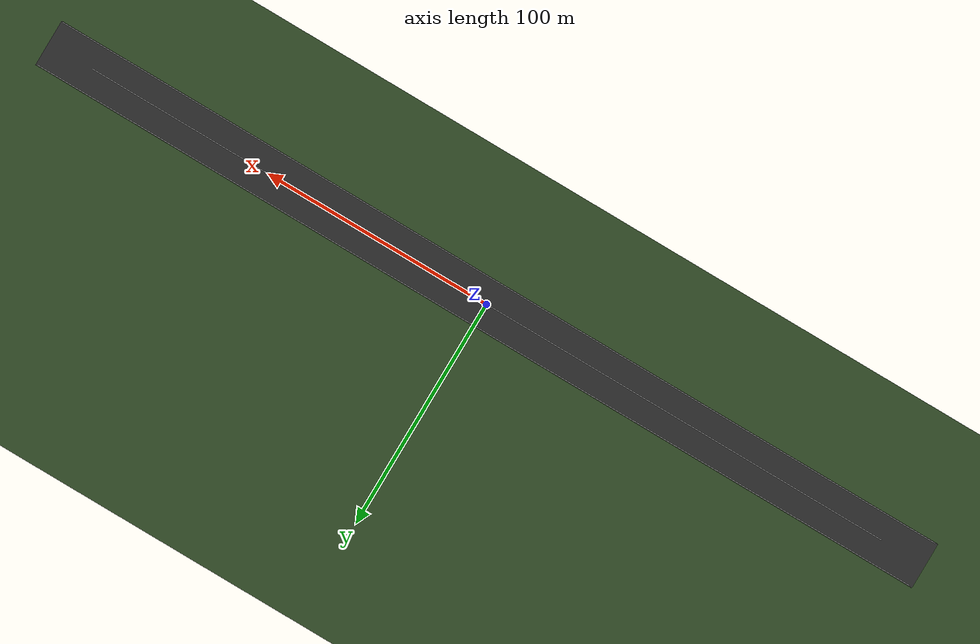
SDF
<sdf version="1.9">
 <world name="falcon_v2_manual_takeoff_runway">
  <physics name="1ms" type="dartsim">
   <max_step_size>0.001</max_step_size>
   <real_time_factor>1.0</real_time_factor>
  </physics>
  <gravity>0 0 -9.81</gravity>
  <scene>
   <ambient>0.25 0.25 0.25 1</ambient>
   <background>0.62 0.70 0.80 1</background>
   <shadows>true</shadows>
  </scene>
  <spherical_coordinates>
   <surface_model>EARTH_WGS84</surface_model>
   <world_frame_orientation>ENU</world_frame_orientation>
   <latitude_deg>0.0</latitude_deg>
   <longitude_deg>0.0</longitude_deg>
   <elevation>0.0</elevation>
   <heading_deg>0.0</heading_deg>
  </spherical_coordinates>
  <magnetic_field>5.5645e-6 22.8758e-6 -42.3884e-6</magnetic_field>
  <plugin filename="gz-sim-physics-system" name="gz::sim::systems::Physics"/>
  <plugin filename="gz-sim-scene-broadcaster-system" name="gz::sim::systems::SceneBroadcaster"/>
  <plugin filename="gz-sim-user-commands-system" name="gz::sim::systems::UserCommands"/>
  <plugin filename="gz-sim-imu-system" name="gz::sim::systems::Imu"/>
  <plugin filename="gz-sim-navsat-system" name="gz::sim::systems::NavSat"/>
  <plugin filename="gz-sim-air-pressure-system" name="gz::sim::systems::AirPressure"/>
  <light type="directional" name="sun">
   <pose>0 0 10 0 0 0</pose>
   <diffuse>0.8 0.8 0.8 1</diffuse>
   <specular>0.2 0.2 0.2 1</specular>
   <direction>-0.5 0.1 -0.9</direction>
  </light>
  <model name="ground_plane">
   <static>true</static>
   <link name="link">
    <collision name="collision">
     <geometry><plane><normal>0 0 1</normal><size>1000 1000</size></plane></geometry>
     <surface><friction><ode><mu>0.8</mu><mu2>0.8</mu2></ode></friction></surface>
    </collision>
    <visual name="visual">
     <geometry><plane><normal>0 0 1</normal><size>1000 1000</size></plane></geometry>
     <material><ambient>0.18 0.28 0.14 1</ambient><diffuse>0.18 0.28 0.14 1</diffuse></material>
    </visual>
   </link>
  </model>
  <model name="runway_visual_only">
   <static>true</static>
   <link name="runway">
    <visual name="asphalt">
     <pose>0 0 0.001 0 0 0</pose>
     <geometry><box><size>400 20 0.002</size></box></geometry>
     <material><ambient>0.12 0.12 0.12 1</ambient><diffuse>0.16 0.16 0.16 1</diffuse></material>
    </visual>
    <visual name="centerline">
     <pose>0 0 0.003 0 0 0</pose>
     <geometry><box><size>360 0.18 0.002</size></box></geometry>
     <material><ambient>0.9 0.9 0.9 1</ambient><diffuse>0.9 0.9 0.9 1</diffuse></material>
    </visual>
    <visual name="left_edge">
     <pose>0 9.7 0.003 0 0 0</pose>
     <geometry><box><size>398 0.18 0.002</size></box></geometry>
     <material><ambient>0.9 0.9 0.9 1</ambient><diffuse>0.9 0.9 0.9 1</diffuse></material>
    </visual>
    <visual name="right_edge">
     <pose>0 -9.7 0.003 0 0 0</pose>
     <geometry><box><size>398 0.18 0.002</size></box></geometry>
     <material><ambient>0.9 0.9 0.9 1</ambient><diffuse>0.9 0.9 0.9 1</diffuse></material>
    </visual>
   </link>
  </model>
 </world>
</sdf>
